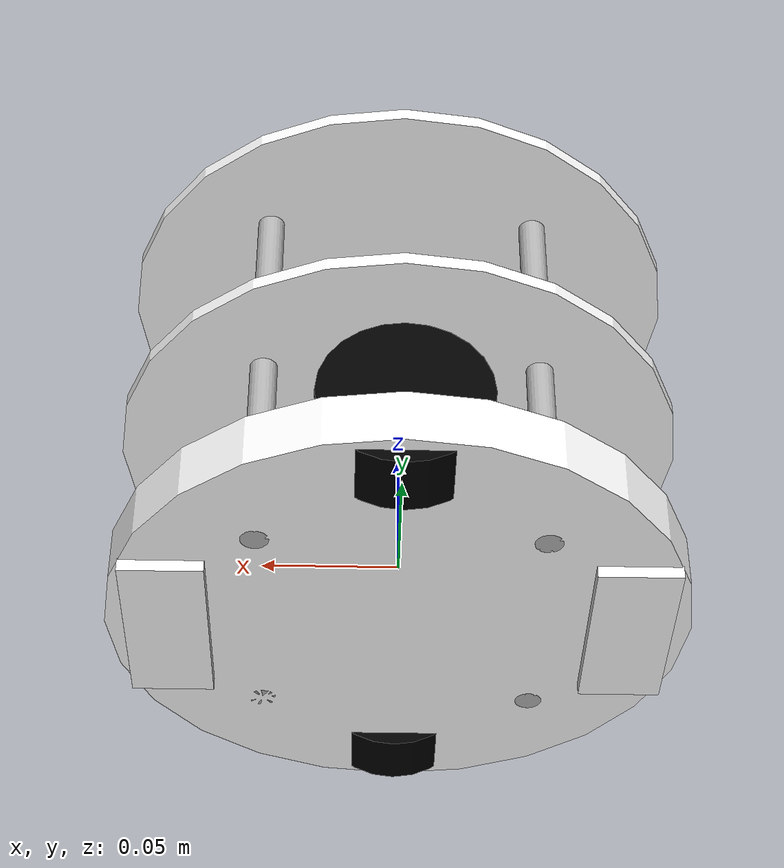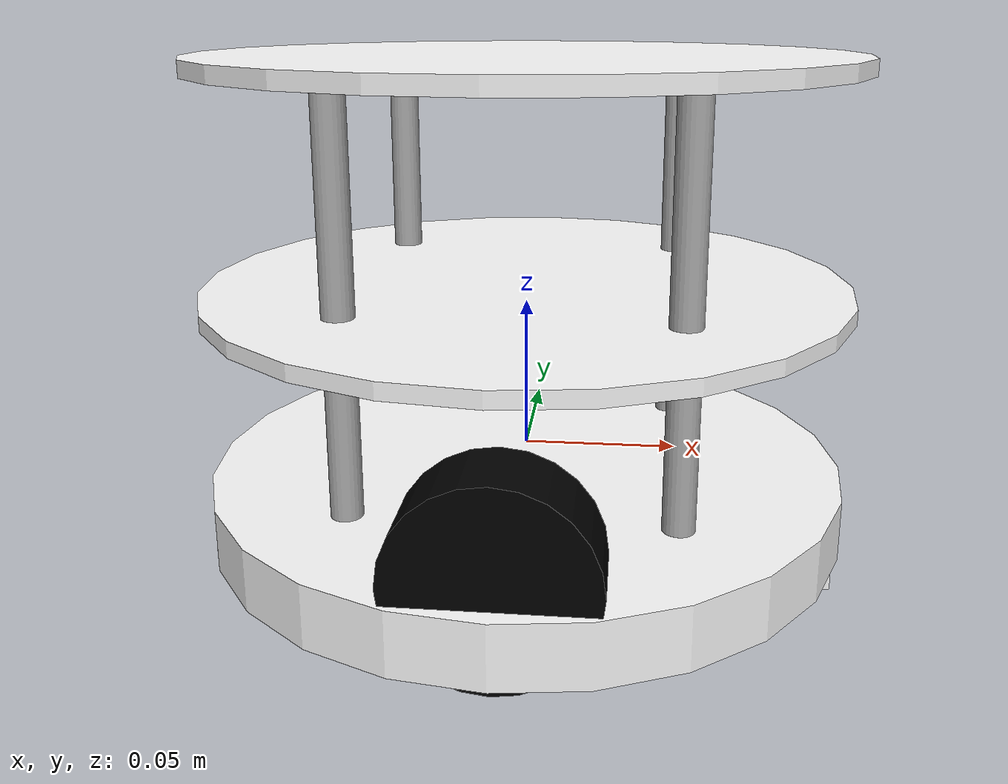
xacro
<?xml version="1.0"?>
<robot xmlns:xacro="http://www.ros.org/wiki/xacro" >

    <xacro:include filename="inertial_macros.xacro"/>

    <material name="white">
        <color rgba="1 1 1 1" />
    </material>

    <material name="white2">
        <color rgba="1 1 1 0.8" />
    </material>

    <material name="grey">
        <color rgba="0.7 0.7 0.7 1" />
    </material>

    <material name="orange">
        <color rgba="1 0.3 0.1 1"/>
    </material>

    <material name="blue">
        <color rgba="0.2 0.2 1 1"/>
    </material>

    <material name="black">
        <color rgba="0 0 0 1"/>
    </material>

    <material name="red">
        <color rgba="1 0.2 0.2 1" />
    </material>

    <!-- BASE LINK -->

    <link name="base_link">

    </link>

    <!-- BASE_FOOTPRINT LINK -->

    <joint name="base_footprint_joint" type="fixed">
        <parent link="base_link"/>
        <child link="base_footprint"/>
        <origin xyz="0 0 0" rpy="0 0 0"/>
    </joint>

    <link name="base_footprint">
    </link>

    <!-- CHASSIS LINK -->

    <joint name="chassis_joint" type="fixed">
        <parent link="base_link"/>
        <child link="chassis"/>
        <origin xyz="0.0 0 -0.017"/>
    </joint>

    <link name="chassis">
        <visual>
            <origin xyz="0.0 0 0.002"/>
            <geometry>
                <cylinder length="0.02" radius="0.105" />
            </geometry>
            <material name="white"/>
        </visual>
        <visual>
            <origin xyz="0.0 0 0.072"/>
            <geometry>
                <cylinder length="0.005" radius="0.105" />
            </geometry>
            <material name="white"/>
        </visual>
        <visual>
            <origin xyz="0.0 0 0.145"/>
            <geometry>
                <cylinder length="0.005" radius="0.105" />
            </geometry>
            <material name="white"/>
        </visual>
        <visual>
            <origin xyz="0.0 0 0.145"/>
            <geometry>
                <cylinder length="0.005" radius="0.105" />
            </geometry>
            <material name="white"/>
        </visual>
        <visual>
            <origin xyz="0.05 0.05 0.067"/>
            <geometry>
                <cylinder length="0.15" radius="0.005" />
            </geometry>
            <material name="grey"/>
        </visual>
         <visual>
            <origin xyz="-0.05 0.05 0.067"/>
            <geometry>
                <cylinder length="0.15" radius="0.005" />
            </geometry>
            <material name="grey"/>
        </visual>
        <visual>
            <origin xyz="-0.05 -0.05 0.067"/>
            <geometry>
                <cylinder length="0.15" radius="0.005" />
            </geometry>
            <material name="grey"/>
        </visual>
        <visual>
            <origin xyz="0.05 -0.05 0.067"/>
            <geometry>
                <cylinder length="0.15" radius="0.005" />
            </geometry>
            <material name="grey"/>
        </visual>
        <collision>
            <origin xyz="0.0 0 0.067"/>
            <geometry>
                <cylinder length="0.15" radius="0.11" />
            </geometry>
        </collision>
        <xacro:inertial_cylinder mass="2" length="0.02" radius="0.105">
            <origin xyz="0 0 0.002" rpy="0 0 0"/>
        </xacro:inertial_cylinder>

    </link>

    <!-- LEFT WHEEL LINK -->

    <joint name="left_wheel_joint" type="continuous">
        <parent link="base_link"/>
        <child link="left_wheel"/>
        <origin xyz="0 0.087 0" rpy="-1.57 0 0" />
        <axis xyz="0 0 1"/>
    </joint>

    <link name="left_wheel">
        <visual>
            <geometry>
                <cylinder radius="0.03" length="0.025"/>
            </geometry>
            <material name="black"/>
        </visual>
        <collision>
            <geometry>
                <cylinder radius="0.03" length="0.025"/>
            </geometry>
        </collision>
        <xacro:inertial_cylinder mass="0.1" length="0.03" radius="0.025">
            <origin xyz="0 0 0" rpy="0 0 0"/>
        </xacro:inertial_cylinder>
    </link>

    <gazebo reference="left_wheel">
        <material>Gazebo/Black</material>
    </gazebo>

    <!-- RIGHT WHEEL LINK -->

    <joint name="right_wheel_joint" type="continuous">
        <parent link="base_link"/>
        <child link="right_wheel"/>
        <origin xyz="0 -0.087 0" rpy="1.57 0 0" />
        <axis xyz="0 0 -1"/>
    </joint>

    <link name="right_wheel">
        <visual>
            <geometry>
                <cylinder radius="0.03" length="0.025"/>
            </geometry>
            <material name="black"/>
        </visual>
        <collision>
            <geometry>
                <cylinder radius="0.03" length="0.025"/>
            </geometry>
        </collision>
        <xacro:inertial_cylinder mass="0.1" length="0.03" radius="0.025">
            <origin xyz="0 0 0" rpy="0 0 0"/>
        </xacro:inertial_cylinder>
    </link>

    <!-- support front-->

    <joint name="suport_front_joint" type="fixed">
        <parent link="chassis"/>
        <child link="suppor_front"/>
        <origin xyz="0.0825 0 -0.01"/>
    </joint>

    <link name="suppor_front">
        <visual>
            <geometry>
                <box size="0.03 0.075 0.005"/>
            </geometry>
            <material name="white"/>
        </visual>
        <collision>
            <geometry>
                <box size="0.03 0.075 0.005"/>
            </geometry>
        </collision>
        <xacro:inertial_box mass="0.01" x="0.03" y="0.075" z="0.005">
            <origin xyz="0.0 0 0.0" rpy="0 0 0"/>
        </xacro:inertial_box>
    </link>

    <!-- support back-->

    <joint name="suport_back_joint" type="fixed">
        <parent link="chassis"/>
        <child link="suppor_back"/>
        <origin xyz="-0.0825 0 -0.01"/>
    </joint>

    <link name="suppor_back">
        <visual>
            <geometry>
                <box size="0.03 0.075 0.005"/>
            </geometry>
            <material name="white"/>
        </visual>
        <collision>
            <geometry>
                <box size="0.03 0.075 0.005"/>
            </geometry>
        </collision>
        <xacro:inertial_box mass="0.01" x="0.03" y="0.075" z="0.005">
            <origin xyz="0.0 0 0.0" rpy="0 0 0"/>
        </xacro:inertial_box>
    </link>

</robot>
